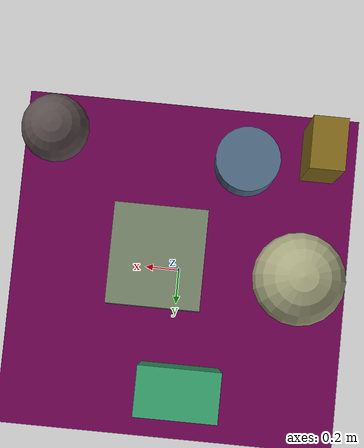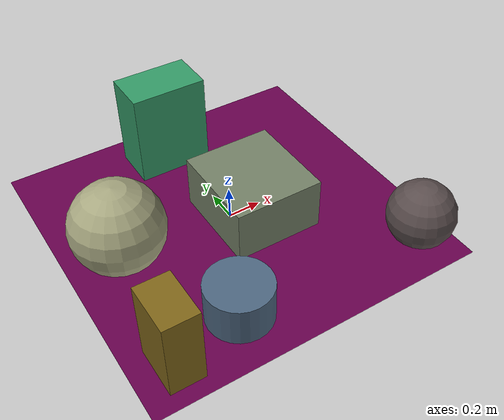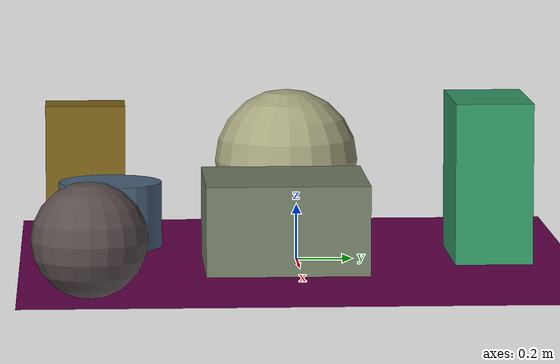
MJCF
<mujoco>
   <asset>
<texture type="skybox" builtin="gradient" rgb1="0.4 0.6 0.8" rgb2="0.2 0.9 0.6" width="256" height="256"/>
<texture name="gradient_0" builtin="gradient" rgb1="0.6 0.6 0.8" rgb2="0.7 0.7 0.2" width="200" height="200"/>
<texture name="gradient_1" builtin="gradient" rgb1="0.8 0.6 0.6" rgb2="0.1 0.4 0.2" width="200" height="200"/>
<texture name="checker_2" builtin="checker" type="2d" rgb1="0.4 0.6 0.4" rgb2="0.3 0.0 0.2" width="200" height="200"/>
<texture name="gradient_3" builtin="gradient" rgb1="0.2 0.4 0.4" rgb2="0.2 0.8 0.4" width="200" height="200"/>
<texture name="flat_4" builtin="flat" rgb1="0.5 0.4 0.1" rgb2="0.5 0.4 0.1"  width="200" height="200"/>
<texture name="flat_5" builtin="flat" rgb1="0.3 0.4 0.5" rgb2="0.3 0.4 0.5"  width="200" height="200"/><material name="gradient_0_mat" reflectance="0" texture="gradient_0" texuniform="true"/>
<material name="gradient_1_mat" reflectance="0" texture="gradient_1" texuniform="true"/>
<material name="checker_2_mat" reflectance="0" texrepeat="10 10" texture="checker_2" texuniform="false" />
<material name="gradient_3_mat" reflectance="0" texture="gradient_3" texuniform="true"/>
<material name="flat_4_mat" reflectance="0" texture="flat_4" texuniform="true"/>
<material name="flat_5_mat" reflectance="0" texture="flat_5" texuniform="true"/>
   </asset>

   <worldbody>
      <light diffuse=".9 .9 .9" pos="0 0 3" dir="0 0 -1"/>
     <geom type="plane" size="1 1 0.1" rgba="0.4 0.0 0.3 1"/>
<geom type="sphere" pos="-0.69 0.0 0.27" size="0.27 0.27 0.27" material="gradient_0_mat" />
<geom type="box" pos="0.13 -0.05 0.16" size="0.27 0.29 0.16" material="gradient_1_mat" />
<geom type="sphere" pos="0.8 -0.75 0.2" size="0.2 0.2 0.2" material="checker_2_mat" />
<geom type="box" pos="-0.06 0.7 0.29" size="0.23 0.14 0.29" material="gradient_3_mat" />
<geom type="box" pos="-0.77 -0.76 0.24" size="0.1 0.15 0.24" material="flat_4_mat" />
<geom type="cylinder" pos="-0.34 -0.67 0.12" size="0.19 0.12 0.12" material="flat_5_mat" /><camera euler="60 0 180" fovy="60" name="camera_a" pos="0 -1.5 1"></camera>   </worldbody>
</mujoco>
